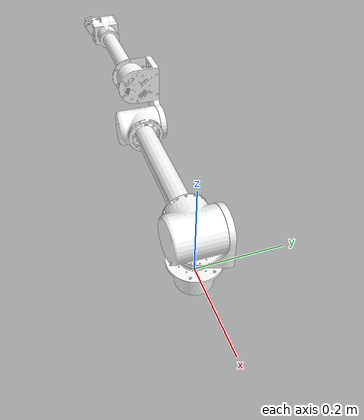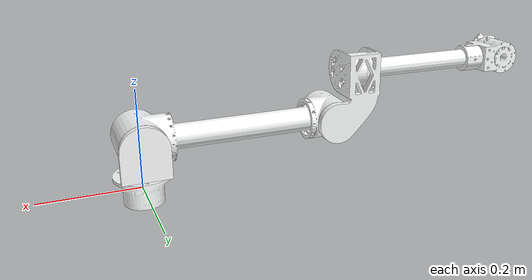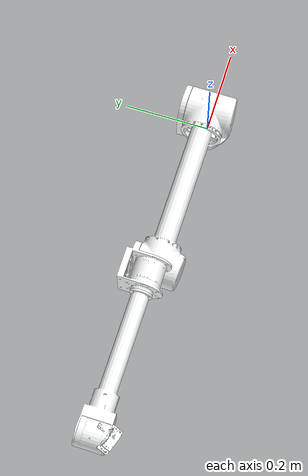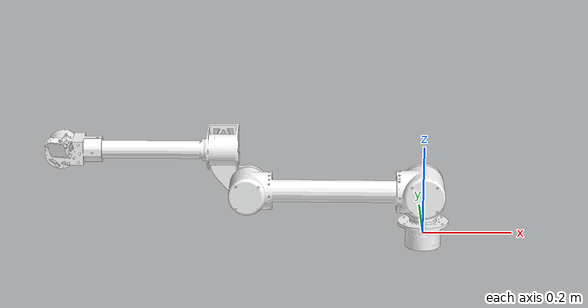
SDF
<?xml version="1.0" ?>
<sdf version="1.10">
    <world name="car_world">
        <physics name="1ms" type="ignored">
            <max_step_size>0.001</max_step_size>
            <real_time_factor>1.0</real_time_factor>
        </physics>
        <plugin
            filename="gz-sim-physics-system"
            name="gz::sim::systems::Physics">
        </plugin>
        <plugin
            filename="gz-sim-user-commands-system"
            name="gz::sim::systems::UserCommands">
        </plugin>
        <plugin
            filename="gz-sim-scene-broadcaster-system"
            name="gz::sim::systems::SceneBroadcaster">
        </plugin>

        <light type="directional" name="sun">
            <cast_shadows>true</cast_shadows>
            <pose>0 0 10 0 0 0</pose>
            <diffuse>0.8 0.8 0.8 1</diffuse>
            <specular>0.2 0.2 0.2 1</specular>
            <attenuation>
                <range>1000</range>
                <constant>0.9</constant>
                <linear>0.01</linear>
                <quadratic>0.001</quadratic>
            </attenuation>
            <direction>-0.5 0.1 -0.9</direction>
        </light>

        <model name='arm_assembly_urdf_sldasm'>
          <link name='base_link'>
            <inertial>
              <pose>-0.00079815 0.0029373 -1.9921e-05 0 0 0</pose>
              <mass>0.31709999999999999</mass>
              <inertia>
                <ixx>0.00023690000000000001</ixx>
                <ixy>2.2819000000000001e-07</ixy>
                <ixz>-1.3738e-07</ixz>
                <iyy>0.0003143</iyy>
                <iyz>-1.8676000000000001e-07</iyz>
                <izz>0.00023727000000000001</izz>
              </inertia>
            </inertial>
            <collision name='base_link_collision'>
              <pose>0 0 0 0 0 0</pose>
              <geometry>
                <mesh>
                  <scale>1 1 1</scale>
                  <uri>model://robotic_arm/meshes/base_link.STL</uri>
                </mesh>
              </geometry>
            </collision>
            <visual name='base_link_visual'>
              <pose>0 0 0 0 0 0</pose>
              <geometry>
                <mesh>
                  <scale>1 1 1</scale>
                  <uri>model://robotic_arm/meshes/base_link.STL</uri>
                </mesh>
              </geometry>
              <material>
                <diffuse>0.9951 1 1 1</diffuse>
                <ambient>0.9951 1 1 1</ambient>
              </material>
            </visual>
          </link>
          <joint name='Amanda' type='revolute'>
            <pose relative_to='base_link'>-0.00082643 0 0.03375 1.5708 2.729338717352812e-17 1.5625</pose>
            <parent>base_link</parent>
            <child>Link_0</child>
            <axis>
              <xyz>0 1 0</xyz>
              <limit>
                <effort>50</effort>
                <velocity>0</velocity>
                <lower>-10000000000000000</lower>
                <upper>10000000000000000</upper>
              </limit>
              <dynamics>
                <spring_reference>0</spring_reference>
                <spring_stiffness>0</spring_stiffness>
              </dynamics>
            </axis>
          </joint>
          <link name='Link_0'>
            <pose relative_to='Amanda'>0 0 0 0 0 0</pose>
            <inertial>
              <pose>0.0396836517172742 0.028044773020265 -3.82136170766012e-07 0 0 0</pose>
              <mass>0.33233750756908897</mass>
              <inertia>
                <ixx>0.00056310492412858001</ixx>
                <ixy>-0.000127137119030391</ixy>
                <ixz>-1.36690522654469e-09</ixz>
                <iyy>0.00045356754918058999</iyy>
                <iyz>-4.10987974592266e-10</iyz>
                <izz>0.00049850988575602805</izz>
              </inertia>
            </inertial>
            <collision name='Link_0_collision'>
              <pose>0 0 0 0 0 0</pose>
              <geometry>
                <mesh>
                  <scale>1 1 1</scale>
                  <uri>model://robotic_arm/meshes/Link_0.STL</uri>
                </mesh>
              </geometry>
            </collision>
            <visual name='Link_0_visual'>
              <pose>0 0 0 0 0 0</pose>
              <geometry>
                <mesh>
                  <scale>1 1 1</scale>
                  <uri>model://robotic_arm/meshes/Link_0.STL</uri>
                </mesh>
              </geometry>
              <material>
                <diffuse>1 1 1 1</diffuse>
                <ambient>1 1 1 1</ambient>
              </material>
            </visual>
          </link>
          <joint name='Sosuke' type='revolute'>
            <pose relative_to='Link_0'>0 0.063 0 1.570800000000062 -1.568900000000152 -1.570800000000073</pose>
            <parent>Link_0</parent>
            <child>Link_1</child>
            <axis>
              <xyz>0 0 1</xyz>
              <limit>
                <lower>-1.5708</lower>
                <upper>3.1415999999999999</upper>
                <effort>100</effort>
                <velocity>0</velocity>
              </limit>
              <dynamics>
                <spring_reference>0</spring_reference>
                <spring_stiffness>0</spring_stiffness>
              </dynamics>
            </axis>
          </joint>
          <link name='Link_1'>
            <pose relative_to='Sosuke'>0 0 0 0 0 0</pose>
            <inertial>
              <pose>-0.163681937832527 1.03264585993301e-06 -0.00531311701789006 0 0 0</pose>
              <mass>1.2915158934404201</mass>
              <inertia>
                <ixx>0.0015237623668333501</ixx>
                <ixy>2.4810662510131099e-08</ixy>
                <ixz>6.2596067468659301e-06</ixz>
                <iyy>0.0023901155154695702</iyy>
                <iyz>1.16628092452105e-08</iyz>
                <izz>0.0023238294399821899</izz>
              </inertia>
            </inertial>
            <collision name='Link_1_collision'>
              <pose>0 0 0 0 0 0</pose>
              <geometry>
                <mesh>
                  <scale>1 1 1</scale>
                  <uri>model://robotic_arm/meshes/Link_1.STL</uri>
                </mesh>
              </geometry>
            </collision>
            <visual name='Link_1_visual'>
              <pose>0 0 0 0 0 0</pose>
              <geometry>
                <mesh>
                  <scale>1 1 1</scale>
                  <uri>model://robotic_arm/meshes/Link_1.STL</uri>
                </mesh>
              </geometry>
              <material>
                <diffuse>0.995098 1 1 1</diffuse>
                <ambient>0.995098 1 1 1</ambient>
              </material>
            </visual>
          </link>
          <joint name='Nathan' type='revolute'>
            <pose relative_to='Link_1'>-0.396 0 0 -0.026701 0.01367 0.10983</pose>
            <parent>Link_1</parent>
            <child>Link_2</child>
            <axis>
              <xyz>0.013669 0.026695 -0.99955</xyz>
              <limit>
                <lower>-2.4784000000000002</lower>
                <upper>2.4784000000000002</upper>
                <effort>60</effort>
                <velocity>0</velocity>
              </limit>
              <dynamics>
                <spring_reference>0</spring_reference>
                <spring_stiffness>0</spring_stiffness>
              </dynamics>
            </axis>
          </joint>
          <link name='Link_2'>
            <pose relative_to='Nathan'>0 0 0 0 0 0</pose>
            <inertial>
              <pose>-0.0413455097315701 0.08487363034394869 -0.0162070623410888 0 0 0</pose>
              <mass>0.40020877556156598</mass>
              <inertia>
                <ixx>0.00051635996018260496</ixx>
                <ixy>8.10737105875724e-05</ixy>
                <ixz>4.0860817721185796e-06</ixz>
                <iyy>0.000311603180405403</iyy>
                <iyz>-9.9370552580646204e-06</iyz>
                <izz>0.00059655681598680204</izz>
              </inertia>
            </inertial>
            <collision name='Link_2_collision'>
              <pose>0 0 0 0 0 0</pose>
              <geometry>
                <mesh>
                  <scale>1 1 1</scale>
                  <uri>model://robotic_arm/meshes/Link_2.STL</uri>
                </mesh>
              </geometry>
            </collision>
            <visual name='Link_2_visual'>
              <pose>0 0 0 0 0 0</pose>
              <geometry>
                <mesh>
                  <scale>1 1 1</scale>
                  <uri>model://robotic_arm/meshes/Link_2.STL</uri>
                </mesh>
              </geometry>
              <material>
                <diffuse>0.995098 1 1 1</diffuse>
                <ambient>0.995098 1 1 1</ambient>
              </material>
            </visual>
          </link>
          <joint name='Henry' type='revolute'>
            <pose relative_to='Link_2'>-0.079846 0.10435 0.00019439 0.04799600000000001 -0.015976 -0.00026869</pose>
            <parent>Link_2</parent>
            <child>Link_3</child>
            <axis>
              <xyz>0.99418 -0.10776 0</xyz>
              <limit>
                <lower>-6.2831999999999999</lower>
                <upper>6.2831999999999999</upper>
                <effort>20</effort>
                <velocity>0</velocity>
              </limit>
              <dynamics>
                <spring_reference>0</spring_reference>
                <spring_stiffness>0</spring_stiffness>
              </dynamics>
            </axis>
          </joint>
          <link name='Link_3'>
            <pose relative_to='Henry'>0 0 0 0 0 0</pose>
            <inertial>
              <pose>-0.266601889894523 0.0289010323616966 -0.000451481428345494 0 0 0</pose>
              <mass>0.45517829655582498</mass>
              <inertia>
                <ixx>0.000259297016882087</ixx>
                <ixy>3.84297214360603e-05</ixy>
                <ixz>5.0615795586846497e-07</ixz>
                <iyy>0.00060557830009397003</iyy>
                <iyz>-1.0770422111889801e-07</iyz>
                <izz>0.00060899430460511703</izz>
              </inertia>
            </inertial>
            <collision name='Link_3_collision'>
              <pose>0 0 0 0 0 0</pose>
              <geometry>
                <mesh>
                  <scale>1 1 1</scale>
                  <uri>model://robotic_arm/meshes/Link_3.STL</uri>
                </mesh>
              </geometry>
            </collision>
            <visual name='Link_3_visual'>
              <pose>0 0 0 0 0 0</pose>
              <geometry>
                <mesh>
                  <scale>1 1 1</scale>
                  <uri>model://robotic_arm/meshes/Link_3.STL</uri>
                </mesh>
              </geometry>
              <material>
                <diffuse>0.995098 1 1 1</diffuse>
                <ambient>0.995098 1 1 1</ambient>
              </material>
            </visual>
          </link>
          <joint name='Indy' type='revolute'>
            <pose relative_to='Link_3'>-0.32409 0.035127 0 0 0 -0.024891</pose>
            <parent>Link_3</parent>
            <child>Link_4</child>
            <axis>
              <xyz>0 0 1</xyz>
              <limit>
                <effort>20</effort>
                <velocity>0</velocity>
                <lower>-10000000000000000</lower>
                <upper>10000000000000000</upper>
              </limit>
              <dynamics>
                <spring_reference>0</spring_reference>
                <spring_stiffness>0</spring_stiffness>
              </dynamics>
            </axis>
          </joint>
          <link name='Link_4'>
            <pose relative_to='Indy'>0 0 0 0 0 0</pose>
            <inertial>
              <pose>-0.0284700798374056 -0.0361453242959057 -0.0217343050502947 0 0 0</pose>
              <mass>0.097487498509493703</mass>
              <inertia>
                <ixx>3.4200643272595501e-05</ixx>
                <ixy>-7.8453247958799498e-06</ixy>
                <ixz>-1.5867013488814401e-06</ixz>
                <iyy>4.5314609628074198e-05</iyy>
                <iyz>-1.3891169158583999e-06</iyz>
                <izz>6.3441057595052999e-05</izz>
              </inertia>
            </inertial>
            <collision name='Link_4_collision'>
              <pose>0 0 0 0 0 0</pose>
              <geometry>
                <mesh>
                  <scale>1 1 1</scale>
                  <uri>model://robotic_arm/meshes/Link_4.STL</uri>
                </mesh>
              </geometry>
            </collision>
            <visual name='Link_4_visual'>
              <pose>0 0 0 0 0 0</pose>
              <geometry>
                <mesh>
                  <scale>1 1 1</scale>
                  <uri>model://robotic_arm/meshes/Link_4.STL</uri>
                </mesh>
              </geometry>
              <material>
                <diffuse>0.995098 1 1 1</diffuse>
                <ambient>0.995098 1 1 1</ambient>
              </material>
            </visual>
          </link>
        </model>
    </world>
</sdf>
